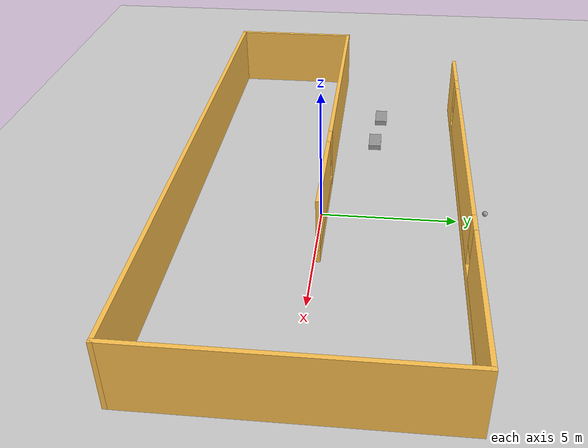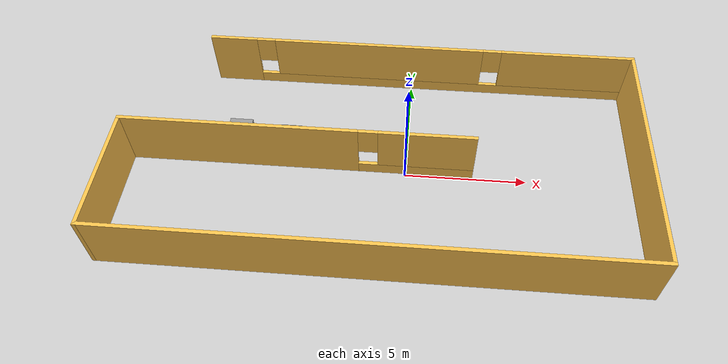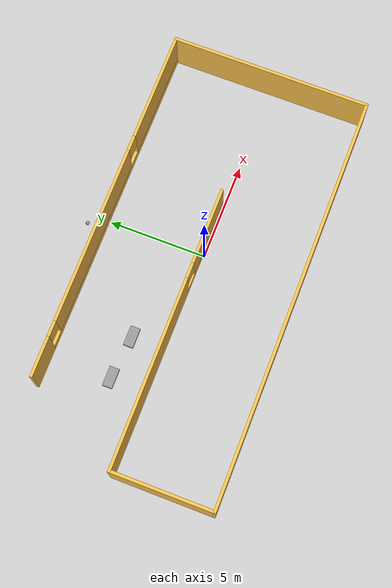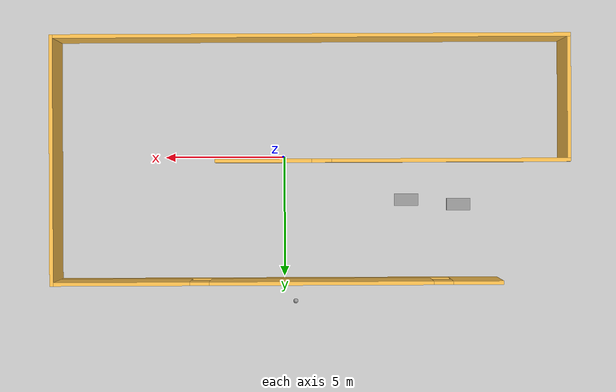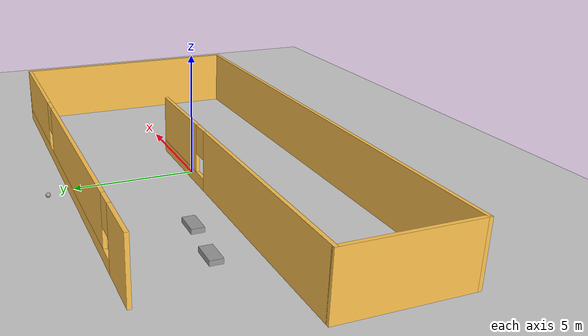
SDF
<sdf version="1.6">
 <world name="default">
  <plugin name="hello" filename="libhello.so"/>
  <light name="sun" type="directional">
   <pose>0 0 10 0 -0 0</pose>
   <diffuse>0.8 0.8 0.8 1</diffuse>
   <specular>0.2 0.2 0.2 1</specular>
   <attenuation>
    <range>1000</range>
    <constant>0.9</constant>
    <linear>0.01</linear>
    <quadratic>0.001</quadratic>
   </attenuation>
   <direction>-0.5 0.1 -0.9</direction>
  </light>
  <model name="ground_plane">
   <static>1</static>
   <link name="link">
    <collision name="collision">
     <geometry><plane><normal>0 0 1</normal><size>100 100</size></plane></geometry>
     <surface>
      <contact><collide_bitmask>65535</collide_bitmask></contact>
      <friction><ode><mu>100</mu><mu2>50</mu2></ode></friction>
     </surface>
    </collision>
    <visual name="visual">
     <cast_shadows>0</cast_shadows>
     <geometry><plane><normal>0 0 1</normal><size>100 100</size></plane></geometry>
     <material>
      <script><uri>file://media/materials/scripts/gazebo.material</uri><name>Gazebo/Grey</name></script>
     </material>
    </visual>
   </link>
  </model>
  <gravity>0 0 -9.8</gravity>
  <magnetic_field>6e-06 2.3e-05 -4.2e-05</magnetic_field>
  <atmosphere type="adiabatic"/>
  <physics name="default_physics" default="0" type="ode">
   <max_step_size>0.001</max_step_size>
   <real_time_factor>1</real_time_factor>
   <real_time_update_rate>1000</real_time_update_rate>
  </physics>
  <scene><ambient>0.4 0.4 0.4 1</ambient><background>0.7 0.7 0.7 1</background><shadows>1</shadows></scene>
  <spherical_coordinates>
   <surface_model>EARTH_WGS84</surface_model>
   <latitude_deg>0</latitude_deg>
   <longitude_deg>0</longitude_deg>
   <elevation>0</elevation>
   <heading_deg>0</heading_deg>
  </spherical_coordinates>
  <model name="mybuilding2">
   <pose>-1.0824 0.10701 0 0 -0 0</pose>
   <link name="Wall_10">
    <pose>-3.375 0.05 0 0 -0 0</pose>
    <visual name="Wall_10_Visual_0">
     <pose>-2.373 0 1.25 0 -0 0</pose>
     <geometry><box><size>9.754 0.15 2.5</size></box></geometry>
     <material>
      <script><uri>file://media/materials/scripts/gazebo.material</uri><name>Gazebo/Grey</name></script>
      <ambient>1 0.764706 0.305882 1</ambient>
     </material>
     <meta><layer>0</layer></meta>
    </visual>
    <collision name="Wall_10_Collision_0">
     <geometry><box><size>9.754 0.15 2.5</size></box></geometry>
     <pose>-2.373 0 1.25 0 -0 0</pose>
    </collision>
    <visual name="Wall_10_Visual_1">
     <pose>4.877 0 0.25 0 -0 0</pose>
     <geometry><box><size>4.746 0.15 0.5</size></box></geometry>
     <material>
      <script><uri>file://media/materials/scripts/gazebo.material</uri><name>Gazebo/Grey</name></script>
      <ambient>1 0.764706 0.305882 1</ambient>
     </material>
     <meta><layer>0</layer></meta>
    </visual>
    <collision name="Wall_10_Collision_1">
     <geometry><box><size>4.746 0.15 0.5</size></box></geometry>
     <pose>4.877 0 0.25 0 -0 0</pose>
    </collision>
    <visual name="Wall_10_Visual_2">
     <pose>5.277 0 1.5 0 -0 0</pose>
     <geometry><box><size>3.946 0.15 2</size></box></geometry>
     <material>
      <script><uri>file://media/materials/scripts/gazebo.material</uri><name>Gazebo/Grey</name></script>
      <ambient>1 0.764706 0.305882 1</ambient>
     </material>
     <meta><layer>0</layer></meta>
    </visual>
    <collision name="Wall_10_Collision_2">
     <geometry><box><size>3.946 0.15 2</size></box></geometry>
     <pose>5.277 0 1.5 0 -0 0</pose>
    </collision>
    <visual name="Wall_10_Visual_3">
     <pose>2.904 0 1.9 0 -0 0</pose>
     <geometry><box><size>0.8 0.15 1.2</size></box></geometry>
     <material>
      <script><uri>file://media/materials/scripts/gazebo.material</uri><name>Gazebo/Grey</name></script>
      <ambient>1 0.764706 0.305882 1</ambient>
     </material>
     <meta><layer>0</layer></meta>
    </visual>
    <collision name="Wall_10_Collision_3">
     <geometry><box><size>0.8 0.15 1.2</size></box></geometry>
     <pose>2.904 0 1.9 0 -0 0</pose>
    </collision>
   </link>
   <link name="Wall_6">
    <pose>1.375 5.05 0 0 -0 0</pose>
    <visual name="Wall_6_Visual_0">
     <pose>-8.22182 0 1.25 0 -0 0</pose>
     <geometry><box><size>2.05636 0.15 2.5</size></box></geometry>
     <material>
      <script><uri>file://media/materials/scripts/gazebo.material</uri><name>Gazebo/Grey</name></script>
      <ambient>1 0.764706 0.305882 1</ambient>
     </material>
     <meta><layer>0</layer></meta>
    </visual>
    <collision name="Wall_6_Collision_0">
     <geometry><box><size>2.05636 0.15 2.5</size></box></geometry>
     <pose>-8.22182 0 1.25 0 -0 0</pose>
    </collision>
    <visual name="Wall_6_Visual_1">
     <pose>1.02818 0 0.25 0 -0 0</pose>
     <geometry><box><size>16.4436 0.15 0.5</size></box></geometry>
     <material>
      <script><uri>file://media/materials/scripts/gazebo.material</uri><name>Gazebo/Grey</name></script>
      <ambient>1 0.764706 0.305882 1</ambient>
     </material>
     <meta><layer>0</layer></meta>
    </visual>
    <collision name="Wall_6_Collision_1">
     <geometry><box><size>16.4436 0.15 0.5</size></box></geometry>
     <pose>1.02818 0 0.25 0 -0 0</pose>
    </collision>
    <visual name="Wall_6_Visual_2">
     <pose>-1.8194 0 1.5 0 -0 0</pose>
     <geometry><box><size>9.14847 0.15 2</size></box></geometry>
     <material>
      <script><uri>file://media/materials/scripts/gazebo.material</uri><name>Gazebo/Grey</name></script>
      <ambient>1 0.764706 0.305882 1</ambient>
     </material>
     <meta><layer>0</layer></meta>
    </visual>
    <collision name="Wall_6_Collision_2">
     <geometry><box><size>9.14847 0.15 2</size></box></geometry>
     <pose>-1.8194 0 1.5 0 -0 0</pose>
    </collision>
    <visual name="Wall_6_Visual_3">
     <pose>6.40242 0 1.5 0 -0 0</pose>
     <geometry><box><size>5.69517 0.15 2</size></box></geometry>
     <material>
      <script><uri>file://media/materials/scripts/gazebo.material</uri><name>Gazebo/Grey</name></script>
      <ambient>1 0.764706 0.305882 1</ambient>
     </material>
     <meta><layer>0</layer></meta>
    </visual>
    <collision name="Wall_6_Collision_3">
     <geometry><box><size>5.69517 0.15 2</size></box></geometry>
     <pose>6.40242 0 1.5 0 -0 0</pose>
    </collision>
    <visual name="Wall_6_Visual_4">
     <pose>-6.79364 0 1.9 0 -0 0</pose>
     <geometry><box><size>0.8 0.15 1.2</size></box></geometry>
     <material>
      <script><uri>file://media/materials/scripts/gazebo.material</uri><name>Gazebo/Grey</name></script>
      <ambient>1 0.764706 0.305882 1</ambient>
     </material>
     <meta><layer>0</layer></meta>
    </visual>
    <collision name="Wall_6_Collision_4">
     <geometry><box><size>0.8 0.15 1.2</size></box></geometry>
     <pose>-6.79364 0 1.9 0 -0 0</pose>
    </collision>
    <visual name="Wall_6_Visual_5">
     <pose>3.15483 0 1.9 0 -0 0</pose>
     <geometry><box><size>0.8 0.15 1.2</size></box></geometry>
     <material>
      <script><uri>file://media/materials/scripts/gazebo.material</uri><name>Gazebo/Grey</name></script>
      <ambient>1 0.764706 0.305882 1</ambient>
     </material>
     <meta><layer>0</layer></meta>
    </visual>
    <collision name="Wall_6_Collision_5">
     <geometry><box><size>0.8 0.15 1.2</size></box></geometry>
     <pose>3.15483 0 1.9 0 -0 0</pose>
    </collision>
   </link>
   <link name="Wall_7">
    <collision name="Wall_7_Collision">
     <geometry><box><size>10.25 0.15 2.5</size></box></geometry>
     <pose>0 0 1.25 0 -0 0</pose>
    </collision>
    <visual name="Wall_7_Visual">
     <pose>0 0 1.25 0 -0 0</pose>
     <geometry><box><size>10.25 0.15 2.5</size></box></geometry>
     <material>
      <script><uri>file://media/materials/scripts/gazebo.material</uri><name>Gazebo/Grey</name></script>
      <ambient>1 0.764706 0.305882 1</ambient>
     </material>
     <meta><layer>0</layer></meta>
    </visual>
    <pose>10.55 0 0 0 0 -1.5708</pose>
   </link>
   <link name="Wall_8">
    <collision name="Wall_8_Collision">
     <geometry><box><size>21.25 0.15 2.5</size></box></geometry>
     <pose>0 0 1.25 0 -0 0</pose>
    </collision>
    <visual name="Wall_8_Visual">
     <pose>0 0 1.25 0 -0 0</pose>
     <geometry><box><size>21.25 0.15 2.5</size></box></geometry>
     <material>
      <script><uri>file://media/materials/scripts/gazebo.material</uri><name>Gazebo/Grey</name></script>
      <ambient>1 0.764706 0.305882 1</ambient>
     </material>
     <meta><layer>0</layer></meta>
    </visual>
    <pose>0 -5.05 0 0 -0 3.14159</pose>
   </link>
   <link name="Wall_9">
    <collision name="Wall_9_Collision">
     <geometry><box><size>5.25 0.15 2.5</size></box></geometry>
     <pose>0 0 1.25 0 -0 0</pose>
    </collision>
    <visual name="Wall_9_Visual">
     <pose>0 0 1.25 0 -0 0</pose>
     <geometry><box><size>5.25 0.15 2.5</size></box></geometry>
     <material>
      <script><uri>file://media/materials/scripts/gazebo.material</uri><name>Gazebo/Grey</name></script>
      <ambient>1 0.764706 0.305882 1</ambient>
     </material>
     <meta><layer>0</layer></meta>
    </visual>
    <pose>-10.55 -2.5 0 0 -0 1.5708</pose>
   </link>
   <static>1</static>
  </model>
  <model name="robot4">
   <link name="link_0">
    <pose>0 0 0.1001 0 -0 0</pose>
    <inertial>
     <mass>1</mass>
     <inertia>
      <ixx>0.166667</ixx>
      <ixy>0</ixy>
      <ixz>0</ixz>
      <iyy>0.166667</iyy>
      <iyz>0</iyz>
      <izz>0.166667</izz>
     </inertia>
    </inertial>
    <visual name="visual">
     <pose>0 0 0 1.57 -0 0</pose>
     <geometry><box><size>1 0.2 0.5</size></box></geometry>
     <material>
      <lighting>1</lighting>
      <script><uri>file://media/materials/scripts/gazebo.material</uri><name>Gazebo/Grey</name></script>
      <shader type="pixel"><normal_map>__default__</normal_map></shader>
      <ambient>0.3 0.3 0.3 1</ambient>
      <diffuse>0.7 0.7 0.7 1</diffuse>
      <specular>0.01 0.01 0.01 1</specular>
      <emissive>0 0 0 1</emissive>
     </material>
    </visual>
    <collision name="collision">
     <pose>0 0 0 1.57 -0 0</pose>
     <geometry><box><size>1 0.2 0.5</size></box></geometry>
     <surface>
      <friction>
       <ode><mu>1</mu><mu2>1</mu2><fdir1>0 0 0</fdir1><slip1>0</slip1><slip2>0</slip2></ode>
       <torsional>
        <coefficient>1</coefficient>
        <patch_radius>0</patch_radius>
        <surface_radius>0</surface_radius>
        <use_patch_radius>1</use_patch_radius>
        <ode><slip>0</slip></ode>
       </torsional>
      </friction>
      <bounce><restitution_coefficient>0</restitution_coefficient><threshold>1e+06</threshold></bounce>
      <contact>
       <collide_without_contact>0</collide_without_contact>
       <collide_without_contact_bitmask>1</collide_without_contact_bitmask>
       <collide_bitmask>1</collide_bitmask>
       <ode>
        <soft_cfm>0</soft_cfm>
        <soft_erp>0.2</soft_erp>
        <kp>1e+13</kp>
        <kd>1</kd>
        <max_vel>0.01</max_vel>
        <min_depth>0</min_depth>
       </ode>
       <bullet>
        <split_impulse>1</split_impulse>
        <split_impulse_penetration_threshold>-0.01</split_impulse_penetration_threshold>
        <soft_cfm>0</soft_cfm>
        <soft_erp>0.2</soft_erp>
        <kp>1e+13</kp>
        <kd>1</kd>
       </bullet>
      </contact>
     </surface>
    </collision>
   </link>
   <link name="link_1_clone">
    <pose>0 0 -0.1001 0 -0 0</pose>
    <inertial>
     <mass>1</mass>
     <inertia><ixx>0.1</ixx><ixy>0</ixy><ixz>0</ixz><iyy>0.1</iyy><iyz>0</iyz><izz>0.1</izz></inertia>
    </inertial>
    <visual name="visual">
     <geometry><sphere><radius>0.1</radius></sphere></geometry>
     <material>
      <lighting>1</lighting>
      <script><uri>file://media/materials/scripts/gazebo.material</uri><name>Gazebo/Grey</name></script>
      <shader type="pixel"><normal_map>__default__</normal_map></shader>
      <ambient>0.3 0.3 0.3 1</ambient>
      <diffuse>0.7 0.7 0.7 1</diffuse>
      <specular>0.01 0.01 0.01 1</specular>
      <emissive>0 0 0 1</emissive>
     </material>
    </visual>
    <collision name="collision">
     <geometry><sphere><radius>0.1</radius></sphere></geometry>
     <surface>
      <friction>
       <ode><mu>1</mu><mu2>1</mu2><fdir1>0 0 0</fdir1><slip1>0</slip1><slip2>0</slip2></ode>
       <torsional>
        <coefficient>1</coefficient>
        <patch_radius>0</patch_radius>
        <surface_radius>0</surface_radius>
        <use_patch_radius>1</use_patch_radius>
        <ode><slip>0</slip></ode>
       </torsional>
      </friction>
      <bounce><restitution_coefficient>0</restitution_coefficient><threshold>1e+06</threshold></bounce>
      <contact>
       <collide_without_contact>0</collide_without_contact>
       <collide_without_contact_bitmask>1</collide_without_contact_bitmask>
       <collide_bitmask>1</collide_bitmask>
       <ode>
        <soft_cfm>0</soft_cfm>
        <soft_erp>0.2</soft_erp>
        <kp>1e+13</kp>
        <kd>1</kd>
        <max_vel>0.01</max_vel>
        <min_depth>0</min_depth>
       </ode>
       <bullet>
        <split_impulse>1</split_impulse>
        <split_impulse_penetration_threshold>-0.01</split_impulse_penetration_threshold>
        <soft_cfm>0</soft_cfm>
        <soft_erp>0.2</soft_erp>
        <kp>1e+13</kp>
        <kd>1</kd>
       </bullet>
      </contact>
     </surface>
    </collision>
   </link>
   <joint name="link_0_JOINT_5" type="revolute">
    <parent>link_0</parent>
    <child>link_1_clone</child>
    <axis>
     <xyz>1 1 0</xyz>
     <use_parent_model_frame>0</use_parent_model_frame>
     <limit>
      <lower>-1.79769e+308</lower>
      <upper>1.79769e+308</upper>
      <effort>-1</effort>
      <velocity>-1</velocity>
     </limit>
     <dynamics>
      <spring_reference>0</spring_reference>
      <spring_stiffness>0</spring_stiffness>
      <damping>0</damping>
     </dynamics>
    </axis>
    <physics>
     <ode><limit><cfm>0</cfm><erp>0.2</erp></limit><suspension><cfm>0</cfm><erp>0.2</erp></suspension></ode>
    </physics>
   </joint>
   <static>0</static>
   <pose>-5.12131 1.80612 0.2001 0 -0 0</pose>
  </model>
  <model name="robot4_clone">
   <link name="link_0">
    <pose>0 0 0.1001 0 -0 0</pose>
    <inertial>
     <mass>1</mass>
     <inertia>
      <ixx>0.166667</ixx>
      <ixy>0</ixy>
      <ixz>0</ixz>
      <iyy>0.166667</iyy>
      <iyz>0</iyz>
      <izz>0.166667</izz>
     </inertia>
    </inertial>
    <visual name="visual">
     <pose>0 0 0 1.57 -0 0</pose>
     <geometry><box><size>1 0.2 0.5</size></box></geometry>
     <material>
      <lighting>1</lighting>
      <script><uri>file://media/materials/scripts/gazebo.material</uri><name>Gazebo/Grey</name></script>
      <shader type="pixel"><normal_map>__default__</normal_map></shader>
      <ambient>0.3 0.3 0.3 1</ambient>
      <diffuse>0.7 0.7 0.7 1</diffuse>
      <specular>0.01 0.01 0.01 1</specular>
      <emissive>0 0 0 1</emissive>
     </material>
    </visual>
    <collision name="collision">
     <pose>0 0 0 1.57 -0 0</pose>
     <geometry><box><size>1 0.2 0.5</size></box></geometry>
     <surface>
      <friction>
       <ode><mu>1</mu><mu2>1</mu2><fdir1>0 0 0</fdir1><slip1>0</slip1><slip2>0</slip2></ode>
       <torsional>
        <coefficient>1</coefficient>
        <patch_radius>0</patch_radius>
        <surface_radius>0</surface_radius>
        <use_patch_radius>1</use_patch_radius>
        <ode><slip>0</slip></ode>
       </torsional>
      </friction>
      <bounce><restitution_coefficient>0</restitution_coefficient><threshold>1e+06</threshold></bounce>
      <contact>
       <collide_without_contact>0</collide_without_contact>
       <collide_without_contact_bitmask>1</collide_without_contact_bitmask>
       <collide_bitmask>1</collide_bitmask>
       <ode>
        <soft_cfm>0</soft_cfm>
        <soft_erp>0.2</soft_erp>
        <kp>1e+13</kp>
        <kd>1</kd>
        <max_vel>0.01</max_vel>
        <min_depth>0</min_depth>
       </ode>
       <bullet>
        <split_impulse>1</split_impulse>
        <split_impulse_penetration_threshold>-0.01</split_impulse_penetration_threshold>
        <soft_cfm>0</soft_cfm>
        <soft_erp>0.2</soft_erp>
        <kp>1e+13</kp>
        <kd>1</kd>
       </bullet>
      </contact>
     </surface>
    </collision>
   </link>
   <link name="link_1_clone">
    <pose>0 0 -0.1001 0 -0 0</pose>
    <inertial>
     <mass>1</mass>
     <inertia><ixx>0.1</ixx><ixy>0</ixy><ixz>0</ixz><iyy>0.1</iyy><iyz>0</iyz><izz>0.1</izz></inertia>
    </inertial>
    <visual name="visual">
     <geometry><sphere><radius>0.1</radius></sphere></geometry>
     <material>
      <lighting>1</lighting>
      <script><uri>file://media/materials/scripts/gazebo.material</uri><name>Gazebo/Grey</name></script>
      <shader type="pixel"><normal_map>__default__</normal_map></shader>
      <ambient>0.3 0.3 0.3 1</ambient>
      <diffuse>0.7 0.7 0.7 1</diffuse>
      <specular>0.01 0.01 0.01 1</specular>
      <emissive>0 0 0 1</emissive>
     </material>
    </visual>
    <collision name="collision">
     <geometry><sphere><radius>0.1</radius></sphere></geometry>
     <surface>
      <friction>
       <ode><mu>1</mu><mu2>1</mu2><fdir1>0 0 0</fdir1><slip1>0</slip1><slip2>0</slip2></ode>
       <torsional>
        <coefficient>1</coefficient>
        <patch_radius>0</patch_radius>
        <surface_radius>0</surface_radius>
        <use_patch_radius>1</use_patch_radius>
        <ode><slip>0</slip></ode>
       </torsional>
      </friction>
      <bounce><restitution_coefficient>0</restitution_coefficient><threshold>1e+06</threshold></bounce>
      <contact>
       <collide_without_contact>0</collide_without_contact>
       <collide_without_contact_bitmask>1</collide_without_contact_bitmask>
       <collide_bitmask>1</collide_bitmask>
       <ode>
        <soft_cfm>0</soft_cfm>
        <soft_erp>0.2</soft_erp>
        <kp>1e+13</kp>
        <kd>1</kd>
        <max_vel>0.01</max_vel>
        <min_depth>0</min_depth>
       </ode>
       <bullet>
        <split_impulse>1</split_impulse>
        <split_impulse_penetration_threshold>-0.01</split_impulse_penetration_threshold>
        <soft_cfm>0</soft_cfm>
        <soft_erp>0.2</soft_erp>
        <kp>1e+13</kp>
        <kd>1</kd>
       </bullet>
      </contact>
     </surface>
    </collision>
   </link>
   <joint name="link_0_JOINT_5" type="revolute">
    <parent>link_0</parent>
    <child>link_1_clone</child>
    <axis>
     <xyz>1 1 0</xyz>
     <use_parent_model_frame>0</use_parent_model_frame>
     <limit>
      <lower>-1.79769e+308</lower>
      <upper>1.79769e+308</upper>
      <effort>-1</effort>
      <velocity>-1</velocity>
     </limit>
     <dynamics>
      <spring_reference>0</spring_reference>
      <spring_stiffness>0</spring_stiffness>
      <damping>0</damping>
     </dynamics>
    </axis>
    <physics>
     <ode><limit><cfm>0</cfm><erp>0.2</erp></limit><suspension><cfm>0</cfm><erp>0.2</erp></suspension></ode>
    </physics>
   </joint>
   <static>0</static>
   <pose>-7.32083 2 0.2001 0 -0 0</pose>
  </model>
  <model name="my_ball">
   <link name="link">
    <inertial>
     <mass>1</mass>
     <inertia><ixx>0.1</ixx><ixy>0</ixy><ixz>0</ixz><iyy>0.1</iyy><iyz>0</iyz><izz>0.1</izz></inertia>
    </inertial>
    <visual name="visual">
     <geometry><sphere><radius>0.1</radius></sphere></geometry>
     <material>
      <script><name>Gazebo/Grey</name><uri>file://media/materials/scripts/gazebo.material</uri></script>
      <shader type="pixel"><normal_map>__default__</normal_map></shader>
      <ambient>1 1 1 1</ambient>
      <diffuse>1 1 1 1</diffuse>
      <specular>1 1 1 1</specular>
      <emissive>1 1 1 1</emissive>
     </material>
    </visual>
    <collision name="collision">
     <geometry><sphere><radius>0.1</radius></sphere></geometry>
     <surface>
      <friction>
       <ode><mu>1</mu><mu2>1</mu2><fdir1>0 0 0</fdir1><slip1>0</slip1><slip2>0</slip2></ode>
       <torsional>
        <coefficient>1</coefficient>
        <patch_radius>0</patch_radius>
        <surface_radius>0</surface_radius>
        <use_patch_radius>1</use_patch_radius>
        <ode><slip>0</slip></ode>
       </torsional>
      </friction>
      <bounce><restitution_coefficient>0</restitution_coefficient><threshold>1e+06</threshold></bounce>
      <contact>
       <collide_without_contact>0</collide_without_contact>
       <collide_without_contact_bitmask>1</collide_without_contact_bitmask>
       <collide_bitmask>1</collide_bitmask>
       <ode>
        <soft_cfm>0</soft_cfm>
        <soft_erp>0.2</soft_erp>
        <kp>1e+13</kp>
        <kd>1</kd>
        <max_vel>0.01</max_vel>
        <min_depth>0</min_depth>
       </ode>
       <bullet>
        <split_impulse>1</split_impulse>
        <split_impulse_penetration_threshold>-0.01</split_impulse_penetration_threshold>
        <soft_cfm>0</soft_cfm>
        <soft_erp>0.2</soft_erp>
        <kp>1e+13</kp>
        <kd>1</kd>
       </bullet>
      </contact>
     </surface>
    </collision>
   </link>
   <static>0</static>
   <pose>-0.457769 6.07436 0.1 0 -0 0</pose>
  </model>
 </world>
</sdf>
